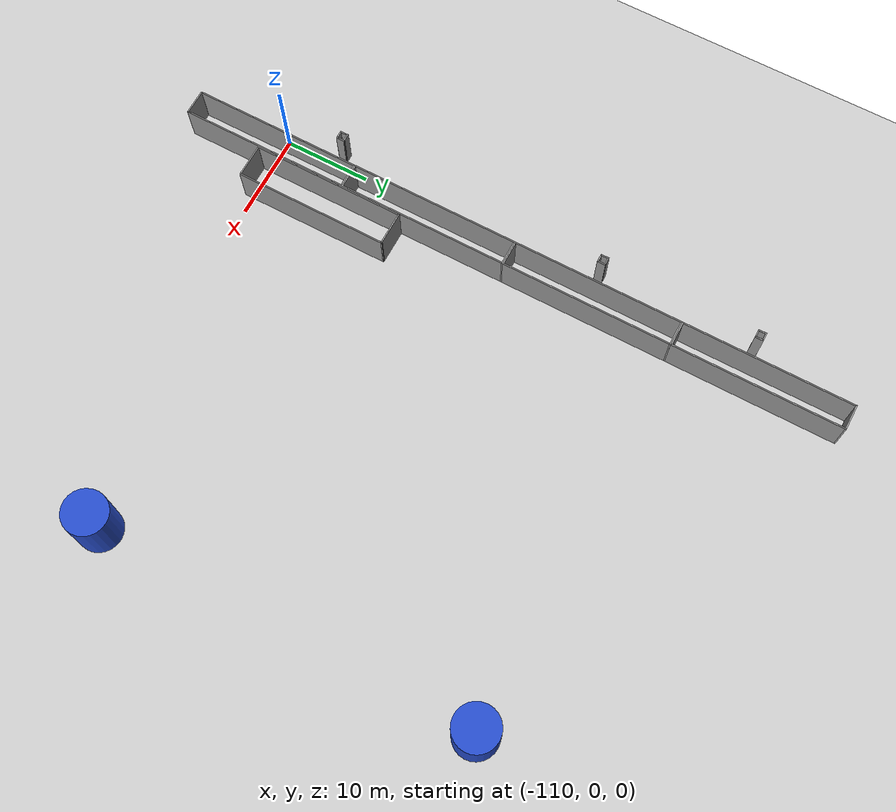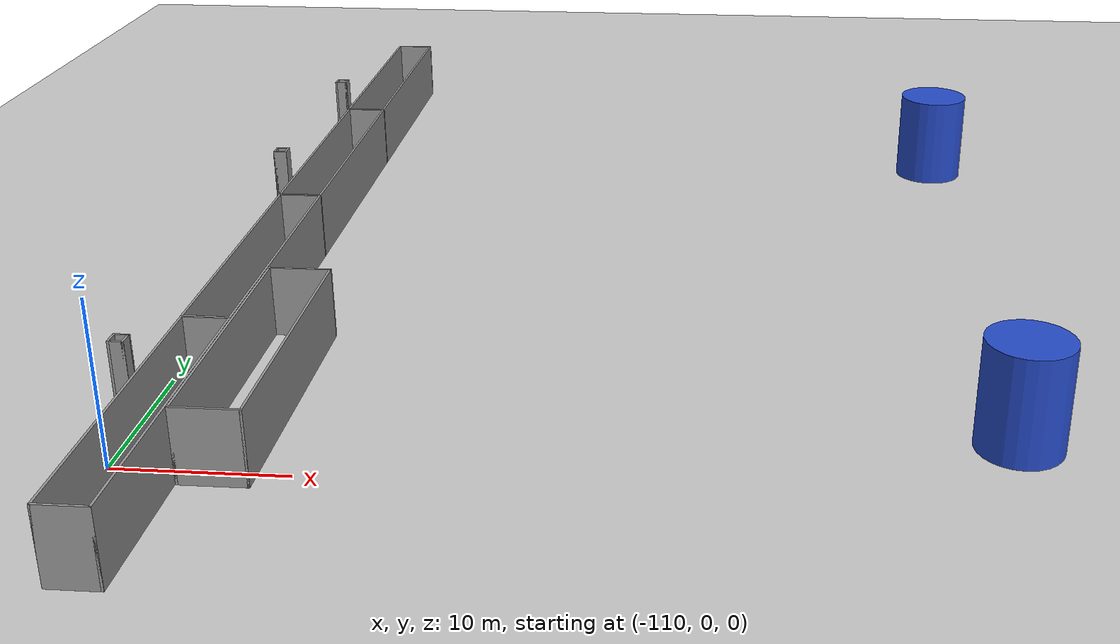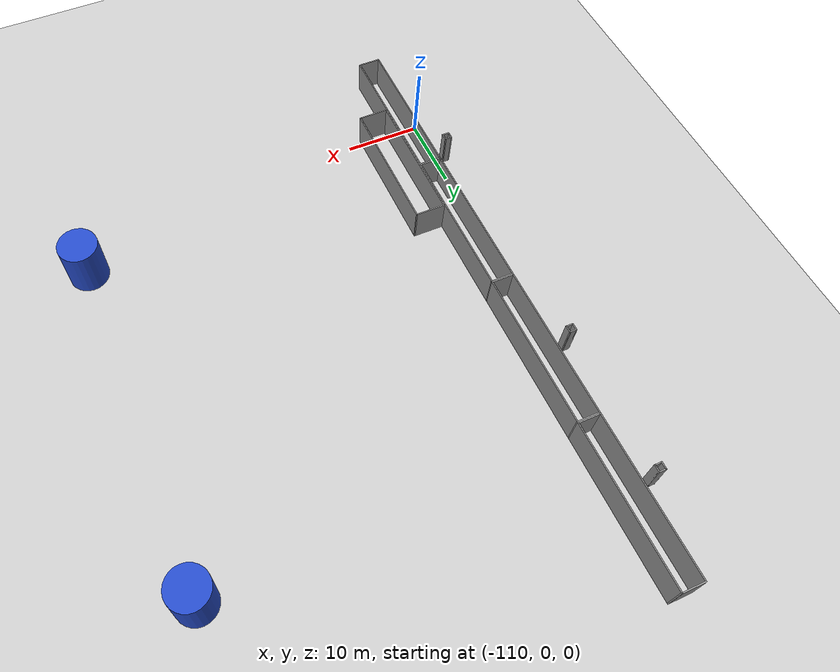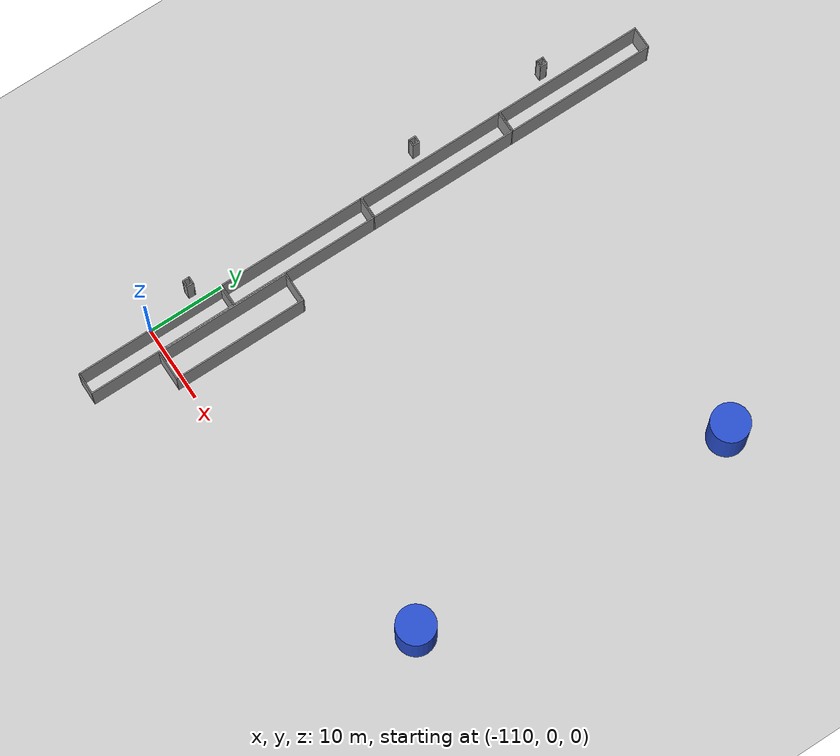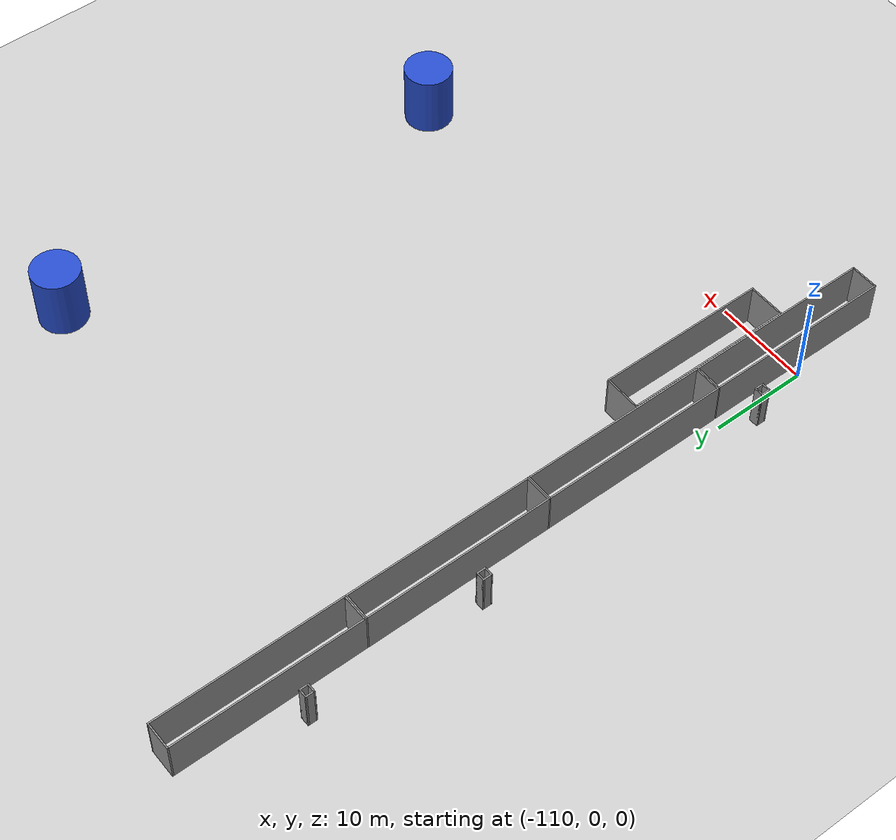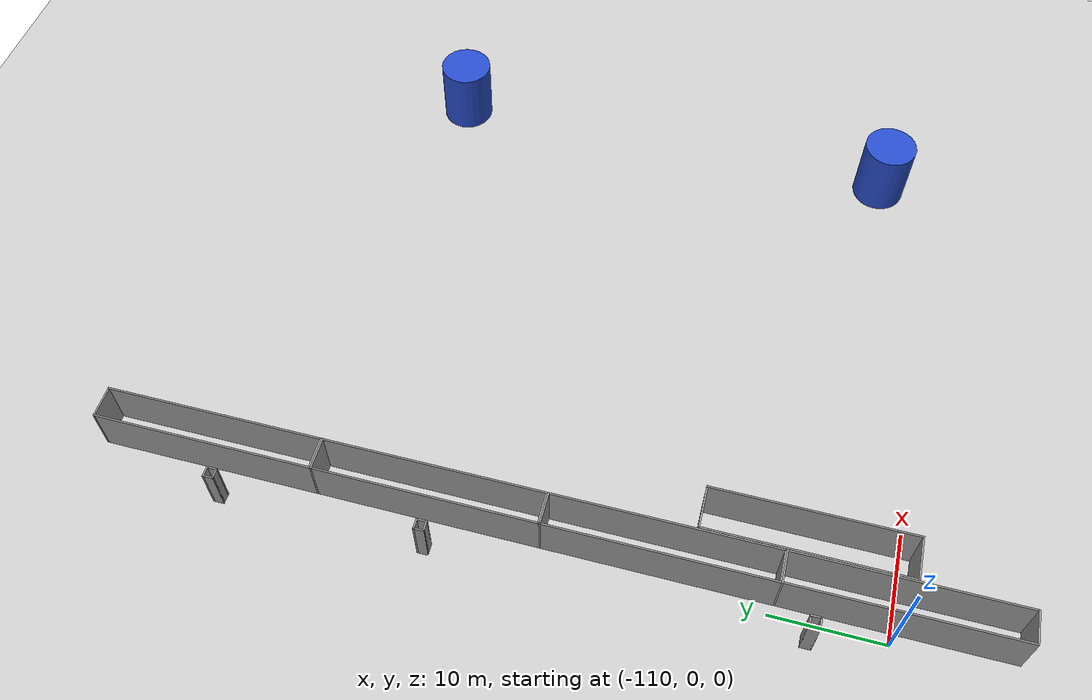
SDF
<sdf version="1.6">
 <world name="default">
  <model name="ground_plane">
   <static>1</static>
   <link name="link">
    <collision name="collision">
     <geometry><plane><normal>0 0 1</normal><size>320 320</size></plane></geometry>
     <surface>
      <contact><collide_bitmask>65535</collide_bitmask></contact>
      <friction><ode><mu>100</mu><mu2>50</mu2></ode></friction>
     </surface>
    </collision>
    <visual name="visual">
     <cast_shadows>0</cast_shadows>
     <geometry><plane><normal>0 0 1</normal><size>320 320</size></plane></geometry>
     <material>
      <script><uri>file://media/materials/scripts/gazebo.material</uri><name>Gazebo/Grey</name></script>
     </material>
    </visual>
   </link>
  </model>
  <model name="unit_cylinder_r2.5_l1_clone_1">
   <link name="link">
    <inertial>
     <mass>1</mass>
     <inertia><ixx>0.145833</ixx><ixy>0</ixy><ixz>0</ixz><iyy>0.145833</iyy><iyz>0</iyz><izz>0.125</izz></inertia>
    </inertial>
    <visual name="visual">
     <geometry><cylinder><radius>2.5</radius><length>6.555</length></cylinder></geometry>
     <material>
      <script><name>Gazebo/Blue</name><uri>file://media/materials/scripts/gazebo.material</uri></script>
      <shader type="vertex"><normal_map>__default__</normal_map></shader>
      <ambient>0.3 0.3 0.3 1</ambient>
      <diffuse>0.7 0.7 0.7 1</diffuse>
      <specular>0.01 0.01 0.01 1</specular>
      <emissive>0 0 0 1</emissive>
     </material>
    </visual>
    <collision name="collision">
     <geometry><cylinder><radius>2.5</radius><length>6.555</length></cylinder></geometry>
     <surface>
      <friction>
       <ode><mu>1</mu><mu2>1</mu2><fdir1>0 0 0</fdir1><slip1>0</slip1><slip2>0</slip2></ode>
       <torsional>
        <coefficient>1</coefficient>
        <patch_radius>0</patch_radius>
        <surface_radius>0</surface_radius>
        <use_patch_radius>1</use_patch_radius>
        <ode><slip>0</slip></ode>
       </torsional>
      </friction>
      <bounce><restitution_coefficient>0</restitution_coefficient><threshold>1e+06</threshold></bounce>
      <contact>
       <collide_without_contact>0</collide_without_contact>
       <collide_without_contact_bitmask>1</collide_without_contact_bitmask>
       <collide_bitmask>1</collide_bitmask>
       <ode>
        <soft_cfm>0</soft_cfm>
        <soft_erp>0.2</soft_erp>
        <kp>1e+13</kp>
        <kd>1</kd>
        <max_vel>0.01</max_vel>
        <min_depth>0</min_depth>
       </ode>
       <bullet>
        <split_impulse>1</split_impulse>
        <split_impulse_penetration_threshold>-0.01</split_impulse_penetration_threshold>
        <soft_cfm>0</soft_cfm>
        <soft_erp>0.2</soft_erp>
        <kp>1e+13</kp>
        <kd>1</kd>
       </bullet>
      </contact>
     </surface>
    </collision>
   </link>
   <static>0</static>
   <pose>-61.1215 50.2491 3.27733 5.6e-05 5.4e-05 -1.9e-05</pose>
  </model>
  <model name="unit_cylinder_r2.5_l1_clone_2">
   <link name="link">
    <inertial>
     <mass>1</mass>
     <inertia><ixx>0.145833</ixx><ixy>0</ixy><ixz>0</ixz><iyy>0.145833</iyy><iyz>0</iyz><izz>0.125</izz></inertia>
    </inertial>
    <visual name="visual">
     <geometry><cylinder><radius>2.5</radius><length>6.555</length></cylinder></geometry>
     <material>
      <script><name>Gazebo/Blue</name><uri>file://media/materials/scripts/gazebo.material</uri></script>
      <shader type="vertex"><normal_map>__default__</normal_map></shader>
      <ambient>0.3 0.3 0.3 1</ambient>
      <diffuse>0.7 0.7 0.7 1</diffuse>
      <specular>0.01 0.01 0.01 1</specular>
      <emissive>0 0 0 1</emissive>
     </material>
    </visual>
    <collision name="collision">
     <geometry><cylinder><radius>2.5</radius><length>6.555</length></cylinder></geometry>
     <surface>
      <friction>
       <ode><mu>1</mu><mu2>1</mu2><fdir1>0 0 0</fdir1><slip1>0</slip1><slip2>0</slip2></ode>
       <torsional>
        <coefficient>1</coefficient>
        <patch_radius>0</patch_radius>
        <surface_radius>0</surface_radius>
        <use_patch_radius>1</use_patch_radius>
        <ode><slip>0</slip></ode>
       </torsional>
      </friction>
      <bounce><restitution_coefficient>0</restitution_coefficient><threshold>1e+06</threshold></bounce>
      <contact>
       <collide_without_contact>0</collide_without_contact>
       <collide_without_contact_bitmask>1</collide_without_contact_bitmask>
       <collide_bitmask>1</collide_bitmask>
       <ode>
        <soft_cfm>0</soft_cfm>
        <soft_erp>0.2</soft_erp>
        <kp>1e+13</kp>
        <kd>1</kd>
        <max_vel>0.01</max_vel>
        <min_depth>0</min_depth>
       </ode>
       <bullet>
        <split_impulse>1</split_impulse>
        <split_impulse_penetration_threshold>-0.01</split_impulse_penetration_threshold>
        <soft_cfm>0</soft_cfm>
        <soft_erp>0.2</soft_erp>
        <kp>1e+13</kp>
        <kd>1</kd>
       </bullet>
      </contact>
     </surface>
    </collision>
   </link>
   <static>0</static>
   <pose>-61.2597 6.09818 3.27733 5.6e-05 5.4e-05 -1.8e-05</pose>
  </model>
  <model name="base20x3_3_clone_clone_2">
   <pose>-107.456 59.556 0 0 -0 0</pose>
   <link name="Wall_21">
    <collision name="Wall_21_Collision">
     <geometry><box><size>20 0.15 6.555</size></box></geometry>
     <pose>0 0 1.25 0 -0 0</pose>
    </collision>
    <visual name="Wall_21_Visual">
     <pose>0 0 1.25 0 -0 0</pose>
     <geometry><box><size>20 0.15 6.555</size></box></geometry>
     <material>
      <script><uri>file://media/materials/scripts/gazebo.material</uri><name>Gazebo/Grey</name></script>
      <ambient>1 1 1 1</ambient>
     </material>
     <meta><layer>0</layer></meta>
    </visual>
    <pose>-1.425 -0 0 0 -0 -1.5708</pose>
   </link>
   <link name="Wall_22">
    <collision name="Wall_22_Collision">
     <geometry><box><size>3 0.15 6.555</size></box></geometry>
     <pose>0 0 1.25 0 -0 0</pose>
    </collision>
    <visual name="Wall_22_Visual">
     <pose>0 0 1.25 0 -0 0</pose>
     <geometry><box><size>3 0.15 6.555</size></box></geometry>
     <material>
      <script><uri>file://media/materials/scripts/gazebo.material</uri><name>Gazebo/Grey</name></script>
      <ambient>1 1 1 1</ambient>
     </material>
     <meta><layer>0</layer></meta>
    </visual>
    <pose>-0 -9.925 0 0 -0 0</pose>
   </link>
   <link name="Wall_23">
    <collision name="Wall_23_Collision">
     <geometry><box><size>20 0.15 6.555</size></box></geometry>
     <pose>0 0 1.25 0 -0 0</pose>
    </collision>
    <visual name="Wall_23_Visual">
     <pose>0 0 1.25 0 -0 0</pose>
     <geometry><box><size>20 0.15 6.555</size></box></geometry>
     <material>
      <script><uri>file://media/materials/scripts/gazebo.material</uri><name>Gazebo/Grey</name></script>
      <ambient>1 1 1 1</ambient>
     </material>
     <meta><layer>0</layer></meta>
    </visual>
    <pose>1.425 -0 0 0 -0 1.5708</pose>
   </link>
   <link name="Wall_24">
    <collision name="Wall_24_Collision">
     <geometry><box><size>3 0.15 6.555</size></box></geometry>
     <pose>0 0 1.25 0 -0 0</pose>
    </collision>
    <visual name="Wall_24_Visual">
     <pose>0 0 1.25 0 -0 0</pose>
     <geometry><box><size>3 0.15 6.555</size></box></geometry>
     <material>
      <script><uri>file://media/materials/scripts/gazebo.material</uri><name>Gazebo/Grey</name></script>
      <ambient>1 1 1 1</ambient>
     </material>
     <meta><layer>0</layer></meta>
    </visual>
    <pose>-0 9.925 0 0 -0 3.14159</pose>
   </link>
   <static>1</static>
  </model>
  <model name="base20x3_3_clone_clone_3">
   <pose>-107.456 39.5552 0 0 -0 0</pose>
   <link name="Wall_21">
    <collision name="Wall_21_Collision">
     <geometry><box><size>20 0.15 6.555</size></box></geometry>
     <pose>0 0 1.25 0 -0 0</pose>
    </collision>
    <visual name="Wall_21_Visual">
     <pose>0 0 1.25 0 -0 0</pose>
     <geometry><box><size>20 0.15 6.555</size></box></geometry>
     <material>
      <script><uri>file://media/materials/scripts/gazebo.material</uri><name>Gazebo/Grey</name></script>
      <ambient>1 1 1 1</ambient>
     </material>
     <meta><layer>0</layer></meta>
    </visual>
    <pose>-1.425 -0 0 0 -0 -1.5708</pose>
   </link>
   <link name="Wall_22">
    <collision name="Wall_22_Collision">
     <geometry><box><size>3 0.15 6.555</size></box></geometry>
     <pose>0 0 1.25 0 -0 0</pose>
    </collision>
    <visual name="Wall_22_Visual">
     <pose>0 0 1.25 0 -0 0</pose>
     <geometry><box><size>3 0.15 6.555</size></box></geometry>
     <material>
      <script><uri>file://media/materials/scripts/gazebo.material</uri><name>Gazebo/Grey</name></script>
      <ambient>1 1 1 1</ambient>
     </material>
     <meta><layer>0</layer></meta>
    </visual>
    <pose>-0 -9.925 0 0 -0 0</pose>
   </link>
   <link name="Wall_23">
    <collision name="Wall_23_Collision">
     <geometry><box><size>20 0.15 6.555</size></box></geometry>
     <pose>0 0 1.25 0 -0 0</pose>
    </collision>
    <visual name="Wall_23_Visual">
     <pose>0 0 1.25 0 -0 0</pose>
     <geometry><box><size>20 0.15 6.555</size></box></geometry>
     <material>
      <script><uri>file://media/materials/scripts/gazebo.material</uri><name>Gazebo/Grey</name></script>
      <ambient>1 1 1 1</ambient>
     </material>
     <meta><layer>0</layer></meta>
    </visual>
    <pose>1.425 -0 0 0 -0 1.5708</pose>
   </link>
   <link name="Wall_24">
    <collision name="Wall_24_Collision">
     <geometry><box><size>3 0.15 6.555</size></box></geometry>
     <pose>0 0 1.25 0 -0 0</pose>
    </collision>
    <visual name="Wall_24_Visual">
     <pose>0 0 1.25 0 -0 0</pose>
     <geometry><box><size>3 0.15 6.555</size></box></geometry>
     <material>
      <script><uri>file://media/materials/scripts/gazebo.material</uri><name>Gazebo/Grey</name></script>
      <ambient>1 1 1 1</ambient>
     </material>
     <meta><layer>0</layer></meta>
    </visual>
    <pose>-0 9.925 0 0 -0 3.14159</pose>
   </link>
   <static>1</static>
  </model>
  <model name="base20x3_3_clone_clone_4">
   <pose>-107.456 19.5635 0 0 -0 0</pose>
   <link name="Wall_21">
    <collision name="Wall_21_Collision">
     <geometry><box><size>20 0.15 6.555</size></box></geometry>
     <pose>0 0 1.25 0 -0 0</pose>
    </collision>
    <visual name="Wall_21_Visual">
     <pose>0 0 1.25 0 -0 0</pose>
     <geometry><box><size>20 0.15 6.555</size></box></geometry>
     <material>
      <script><uri>file://media/materials/scripts/gazebo.material</uri><name>Gazebo/Grey</name></script>
      <ambient>1 1 1 1</ambient>
     </material>
     <meta><layer>0</layer></meta>
    </visual>
    <pose>-1.425 -0 0 0 -0 -1.5708</pose>
   </link>
   <link name="Wall_22">
    <collision name="Wall_22_Collision">
     <geometry><box><size>3 0.15 6.555</size></box></geometry>
     <pose>0 0 1.25 0 -0 0</pose>
    </collision>
    <visual name="Wall_22_Visual">
     <pose>0 0 1.25 0 -0 0</pose>
     <geometry><box><size>3 0.15 6.555</size></box></geometry>
     <material>
      <script><uri>file://media/materials/scripts/gazebo.material</uri><name>Gazebo/Grey</name></script>
      <ambient>1 1 1 1</ambient>
     </material>
     <meta><layer>0</layer></meta>
    </visual>
    <pose>-0 -9.925 0 0 -0 0</pose>
   </link>
   <link name="Wall_23">
    <collision name="Wall_23_Collision">
     <geometry><box><size>20 0.15 6.555</size></box></geometry>
     <pose>0 0 1.25 0 -0 0</pose>
    </collision>
    <visual name="Wall_23_Visual">
     <pose>0 0 1.25 0 -0 0</pose>
     <geometry><box><size>20 0.15 6.555</size></box></geometry>
     <material>
      <script><uri>file://media/materials/scripts/gazebo.material</uri><name>Gazebo/Grey</name></script>
      <ambient>1 1 1 1</ambient>
     </material>
     <meta><layer>0</layer></meta>
    </visual>
    <pose>1.425 -0 0 0 -0 1.5708</pose>
   </link>
   <link name="Wall_24">
    <collision name="Wall_24_Collision">
     <geometry><box><size>3 0.15 6.555</size></box></geometry>
     <pose>0 0 1.25 0 -0 0</pose>
    </collision>
    <visual name="Wall_24_Visual">
     <pose>0 0 1.25 0 -0 0</pose>
     <geometry><box><size>3 0.15 6.555</size></box></geometry>
     <material>
      <script><uri>file://media/materials/scripts/gazebo.material</uri><name>Gazebo/Grey</name></script>
      <ambient>1 1 1 1</ambient>
     </material>
     <meta><layer>0</layer></meta>
    </visual>
    <pose>-0 9.925 0 0 -0 3.14159</pose>
   </link>
   <static>1</static>
  </model>
  <model name="base20x3_3_clone_clone_5">
   <pose>-107.447 -0.429182 0 0 -0 0</pose>
   <link name="Wall_21">
    <collision name="Wall_21_Collision">
     <geometry><box><size>20 0.15 6.555</size></box></geometry>
     <pose>0 0 1.25 0 -0 0</pose>
    </collision>
    <visual name="Wall_21_Visual">
     <pose>0 0 1.25 0 -0 0</pose>
     <geometry><box><size>20 0.15 6.555</size></box></geometry>
     <material>
      <script><uri>file://media/materials/scripts/gazebo.material</uri><name>Gazebo/Grey</name></script>
      <ambient>1 1 1 1</ambient>
     </material>
     <meta><layer>0</layer></meta>
    </visual>
    <pose>-1.425 -0 0 0 -0 -1.5708</pose>
   </link>
   <link name="Wall_22">
    <collision name="Wall_22_Collision">
     <geometry><box><size>3 0.15 6.555</size></box></geometry>
     <pose>0 0 1.25 0 -0 0</pose>
    </collision>
    <visual name="Wall_22_Visual">
     <pose>0 0 1.25 0 -0 0</pose>
     <geometry><box><size>3 0.15 6.555</size></box></geometry>
     <material>
      <script><uri>file://media/materials/scripts/gazebo.material</uri><name>Gazebo/Grey</name></script>
      <ambient>1 1 1 1</ambient>
     </material>
     <meta><layer>0</layer></meta>
    </visual>
    <pose>-0 -9.925 0 0 -0 0</pose>
   </link>
   <link name="Wall_23">
    <collision name="Wall_23_Collision">
     <geometry><box><size>20 0.15 6.555</size></box></geometry>
     <pose>0 0 1.25 0 -0 0</pose>
    </collision>
    <visual name="Wall_23_Visual">
     <pose>0 0 1.25 0 -0 0</pose>
     <geometry><box><size>20 0.15 6.555</size></box></geometry>
     <material>
      <script><uri>file://media/materials/scripts/gazebo.material</uri><name>Gazebo/Grey</name></script>
      <ambient>1 1 1 1</ambient>
     </material>
     <meta><layer>0</layer></meta>
    </visual>
    <pose>1.425 -0 0 0 -0 1.5708</pose>
   </link>
   <link name="Wall_24">
    <collision name="Wall_24_Collision">
     <geometry><box><size>3 0.15 6.555</size></box></geometry>
     <pose>0 0 1.25 0 -0 0</pose>
    </collision>
    <visual name="Wall_24_Visual">
     <pose>0 0 1.25 0 -0 0</pose>
     <geometry><box><size>3 0.15 6.555</size></box></geometry>
     <material>
      <script><uri>file://media/materials/scripts/gazebo.material</uri><name>Gazebo/Grey</name></script>
      <ambient>1 1 1 1</ambient>
     </material>
     <meta><layer>0</layer></meta>
    </visual>
    <pose>-0 9.925 0 0 -0 3.14159</pose>
   </link>
   <static>1</static>
  </model>
  <model name="box_1mx1m_15_clone_clone_1">
   <pose>-111.482 57.506 0 0 -0 0</pose>
   <link name="Wall_10">
    <collision name="Wall_10_Collision">
     <geometry><box><size>1 0.15 6.555</size></box></geometry>
     <pose>0 0 1.25 0 -0 0</pose>
    </collision>
    <visual name="Wall_10_Visual">
     <pose>0 0 1.25 0 -0 0</pose>
     <geometry><box><size>1 0.15 6.555</size></box></geometry>
     <material>
      <script><uri>file://media/materials/scripts/gazebo.material</uri><name>Gazebo/Grey</name></script>
      <ambient>1 1 1 1</ambient>
     </material>
     <meta><layer>0</layer></meta>
    </visual>
    <pose>-0.425 0 0 0 -0 -1.5708</pose>
   </link>
   <link name="Wall_11">
    <collision name="Wall_11_Collision">
     <geometry><box><size>1 0.15 6.555</size></box></geometry>
     <pose>0 0 1.25 0 -0 0</pose>
    </collision>
    <visual name="Wall_11_Visual">
     <pose>0 0 1.25 0 -0 0</pose>
     <geometry><box><size>1 0.15 6.555</size></box></geometry>
     <material>
      <script><uri>file://media/materials/scripts/gazebo.material</uri><name>Gazebo/Grey</name></script>
      <ambient>1 1 1 1</ambient>
     </material>
     <meta><layer>0</layer></meta>
    </visual>
    <pose>0 -0.425 0 0 -0 0</pose>
   </link>
   <link name="Wall_12">
    <collision name="Wall_12_Collision">
     <geometry><box><size>1 0.15 6.555</size></box></geometry>
     <pose>0 0 1.25 0 -0 0</pose>
    </collision>
    <visual name="Wall_12_Visual">
     <pose>0 0 1.25 0 -0 0</pose>
     <geometry><box><size>1 0.15 6.555</size></box></geometry>
     <material>
      <script><uri>file://media/materials/scripts/gazebo.material</uri><name>Gazebo/Grey</name></script>
      <ambient>1 1 1 1</ambient>
     </material>
     <meta><layer>0</layer></meta>
    </visual>
    <pose>0.425 0 0 0 -0 1.5708</pose>
   </link>
   <link name="Wall_13">
    <collision name="Wall_13_Collision">
     <geometry><box><size>1 0.15 6.555</size></box></geometry>
     <pose>0 0 1.25 0 -0 0</pose>
    </collision>
    <visual name="Wall_13_Visual">
     <pose>0 0 1.25 0 -0 0</pose>
     <geometry><box><size>1 0.15 6.555</size></box></geometry>
     <material>
      <script><uri>file://media/materials/scripts/gazebo.material</uri><name>Gazebo/Grey</name></script>
      <ambient>1 1 1 1</ambient>
     </material>
     <meta><layer>0</layer></meta>
    </visual>
    <pose>0 0.425 0 0 -0 3.14159</pose>
   </link>
   <static>1</static>
  </model>
  <model name="box_1mx1m_15_clone_clone_2">
   <pose>-111.524 38.9142 0 0 -0 0</pose>
   <link name="Wall_10">
    <collision name="Wall_10_Collision">
     <geometry><box><size>1 0.15 6.555</size></box></geometry>
     <pose>0 0 1.25 0 -0 0</pose>
    </collision>
    <visual name="Wall_10_Visual">
     <pose>0 0 1.25 0 -0 0</pose>
     <geometry><box><size>1 0.15 6.555</size></box></geometry>
     <material>
      <script><uri>file://media/materials/scripts/gazebo.material</uri><name>Gazebo/Grey</name></script>
      <ambient>1 1 1 1</ambient>
     </material>
     <meta><layer>0</layer></meta>
    </visual>
    <pose>-0.425 0 0 0 -0 -1.5708</pose>
   </link>
   <link name="Wall_11">
    <collision name="Wall_11_Collision">
     <geometry><box><size>1 0.15 6.555</size></box></geometry>
     <pose>0 0 1.25 0 -0 0</pose>
    </collision>
    <visual name="Wall_11_Visual">
     <pose>0 0 1.25 0 -0 0</pose>
     <geometry><box><size>1 0.15 6.555</size></box></geometry>
     <material>
      <script><uri>file://media/materials/scripts/gazebo.material</uri><name>Gazebo/Grey</name></script>
      <ambient>1 1 1 1</ambient>
     </material>
     <meta><layer>0</layer></meta>
    </visual>
    <pose>0 -0.425 0 0 -0 0</pose>
   </link>
   <link name="Wall_12">
    <collision name="Wall_12_Collision">
     <geometry><box><size>1 0.15 6.555</size></box></geometry>
     <pose>0 0 1.25 0 -0 0</pose>
    </collision>
    <visual name="Wall_12_Visual">
     <pose>0 0 1.25 0 -0 0</pose>
     <geometry><box><size>1 0.15 6.555</size></box></geometry>
     <material>
      <script><uri>file://media/materials/scripts/gazebo.material</uri><name>Gazebo/Grey</name></script>
      <ambient>1 1 1 1</ambient>
     </material>
     <meta><layer>0</layer></meta>
    </visual>
    <pose>0.425 0 0 0 -0 1.5708</pose>
   </link>
   <link name="Wall_13">
    <collision name="Wall_13_Collision">
     <geometry><box><size>1 0.15 6.555</size></box></geometry>
     <pose>0 0 1.25 0 -0 0</pose>
    </collision>
    <visual name="Wall_13_Visual">
     <pose>0 0 1.25 0 -0 0</pose>
     <geometry><box><size>1 0.15 6.555</size></box></geometry>
     <material>
      <script><uri>file://media/materials/scripts/gazebo.material</uri><name>Gazebo/Grey</name></script>
      <ambient>1 1 1 1</ambient>
     </material>
     <meta><layer>0</layer></meta>
    </visual>
    <pose>0 0.425 0 0 -0 3.14159</pose>
   </link>
   <static>1</static>
  </model>
  <model name="box_1mx1m_15_clone_clone_3">
   <pose>-111.448 6.51341 0 0 -0 0</pose>
   <link name="Wall_10">
    <collision name="Wall_10_Collision">
     <geometry><box><size>1 0.15 6.555</size></box></geometry>
     <pose>0 0 1.25 0 -0 0</pose>
    </collision>
    <visual name="Wall_10_Visual">
     <pose>0 0 1.25 0 -0 0</pose>
     <geometry><box><size>1 0.15 6.555</size></box></geometry>
     <material>
      <script><uri>file://media/materials/scripts/gazebo.material</uri><name>Gazebo/Grey</name></script>
      <ambient>1 1 1 1</ambient>
     </material>
     <meta><layer>0</layer></meta>
    </visual>
    <pose>-0.425 0 0 0 -0 -1.5708</pose>
   </link>
   <link name="Wall_11">
    <collision name="Wall_11_Collision">
     <geometry><box><size>1 0.15 6.555</size></box></geometry>
     <pose>0 0 1.25 0 -0 0</pose>
    </collision>
    <visual name="Wall_11_Visual">
     <pose>0 0 1.25 0 -0 0</pose>
     <geometry><box><size>1 0.15 6.555</size></box></geometry>
     <material>
      <script><uri>file://media/materials/scripts/gazebo.material</uri><name>Gazebo/Grey</name></script>
      <ambient>1 1 1 1</ambient>
     </material>
     <meta><layer>0</layer></meta>
    </visual>
    <pose>0 -0.425 0 0 -0 0</pose>
   </link>
   <link name="Wall_12">
    <collision name="Wall_12_Collision">
     <geometry><box><size>1 0.15 6.555</size></box></geometry>
     <pose>0 0 1.25 0 -0 0</pose>
    </collision>
    <visual name="Wall_12_Visual">
     <pose>0 0 1.25 0 -0 0</pose>
     <geometry><box><size>1 0.15 6.555</size></box></geometry>
     <material>
      <script><uri>file://media/materials/scripts/gazebo.material</uri><name>Gazebo/Grey</name></script>
      <ambient>1 1 1 1</ambient>
     </material>
     <meta><layer>0</layer></meta>
    </visual>
    <pose>0.425 0 0 0 -0 1.5708</pose>
   </link>
   <link name="Wall_13">
    <collision name="Wall_13_Collision">
     <geometry><box><size>1 0.15 6.555</size></box></geometry>
     <pose>0 0 1.25 0 -0 0</pose>
    </collision>
    <visual name="Wall_13_Visual">
     <pose>0 0 1.25 0 -0 0</pose>
     <geometry><box><size>1 0.15 6.555</size></box></geometry>
     <material>
      <script><uri>file://media/materials/scripts/gazebo.material</uri><name>Gazebo/Grey</name></script>
      <ambient>1 1 1 1</ambient>
     </material>
     <meta><layer>0</layer></meta>
    </visual>
    <pose>0 0.425 0 0 -0 3.14159</pose>
   </link>
   <static>1</static>
  </model>
  <model name="base18x4_3_clone_0">
   <pose>-103.933 7.90209 0 0 -0 0</pose>
   <link name="Wall_6">
    <collision name="Wall_6_Collision">
     <geometry><box><size>18 0.15 6.555</size></box></geometry>
     <pose>0 0 1.25 0 -0 0</pose>
    </collision>
    <visual name="Wall_6_Visual">
     <pose>0 0 1.25 0 -0 0</pose>
     <geometry><box><size>18 0.15 6.555</size></box></geometry>
     <material>
      <script><uri>file://media/materials/scripts/gazebo.material</uri><name>Gazebo/Grey</name></script>
      <ambient>1 1 1 1</ambient>
     </material>
     <meta><layer>0</layer></meta>
    </visual>
    <pose>-1.925 0 0 0 -0 -1.5708</pose>
   </link>
   <link name="Wall_7">
    <collision name="Wall_7_Collision">
     <geometry><box><size>4 0.15 6.555</size></box></geometry>
     <pose>0 0 1.25 0 -0 0</pose>
    </collision>
    <visual name="Wall_7_Visual">
     <pose>0 0 1.25 0 -0 0</pose>
     <geometry><box><size>4 0.15 6.555</size></box></geometry>
     <material>
      <script><uri>file://media/materials/scripts/gazebo.material</uri><name>Gazebo/Grey</name></script>
      <ambient>1 1 1 1</ambient>
     </material>
     <meta><layer>0</layer></meta>
    </visual>
    <pose>0 -8.925 0 0 -0 0</pose>
   </link>
   <link name="Wall_8">
    <collision name="Wall_8_Collision">
     <geometry><box><size>18 0.15 6.555</size></box></geometry>
     <pose>0 0 1.25 0 -0 0</pose>
    </collision>
    <visual name="Wall_8_Visual">
     <pose>0 0 1.25 0 -0 0</pose>
     <geometry><box><size>18 0.15 6.555</size></box></geometry>
     <material>
      <script><uri>file://media/materials/scripts/gazebo.material</uri><name>Gazebo/Grey</name></script>
      <ambient>1 1 1 1</ambient>
     </material>
     <meta><layer>0</layer></meta>
    </visual>
    <pose>1.925 0 0 0 -0 1.5708</pose>
   </link>
   <link name="Wall_9">
    <collision name="Wall_9_Collision">
     <geometry><box><size>4 0.15 6.555</size></box></geometry>
     <pose>0 0 1.25 0 -0 0</pose>
    </collision>
    <visual name="Wall_9_Visual">
     <pose>0 0 1.25 0 -0 0</pose>
     <geometry><box><size>4 0.15 6.555</size></box></geometry>
     <material>
      <script><uri>file://media/materials/scripts/gazebo.material</uri><name>Gazebo/Grey</name></script>
      <ambient>1 1 1 1</ambient>
     </material>
     <meta><layer>0</layer></meta>
    </visual>
    <pose>0 8.925 0 0 -0 3.14159</pose>
   </link>
   <static>1</static>
  </model>
 </world>
</sdf>
